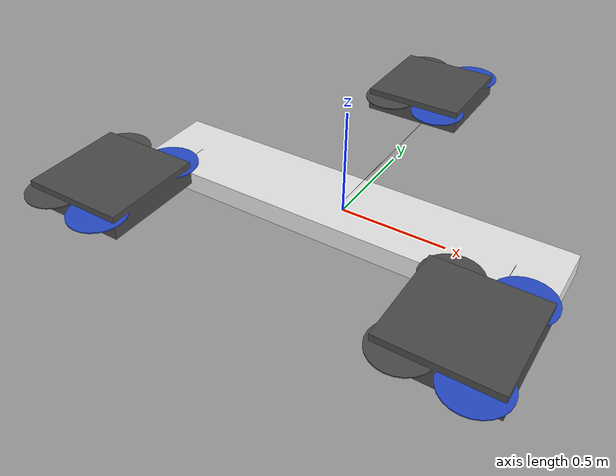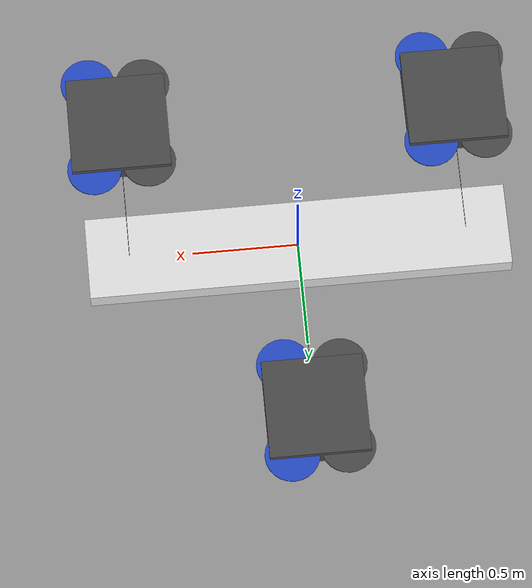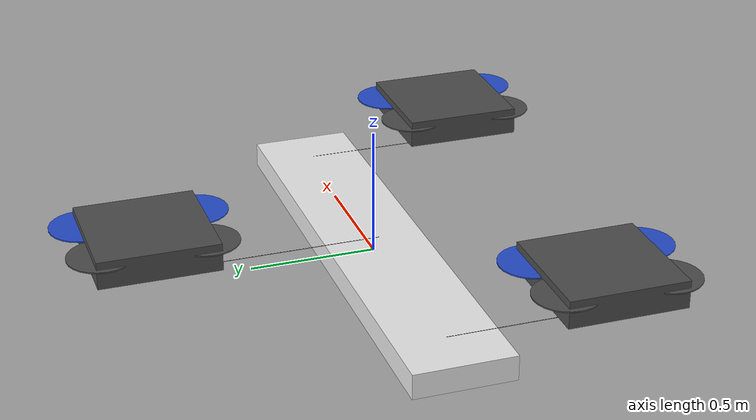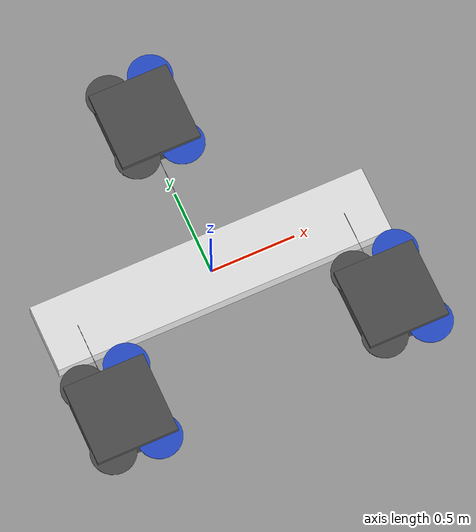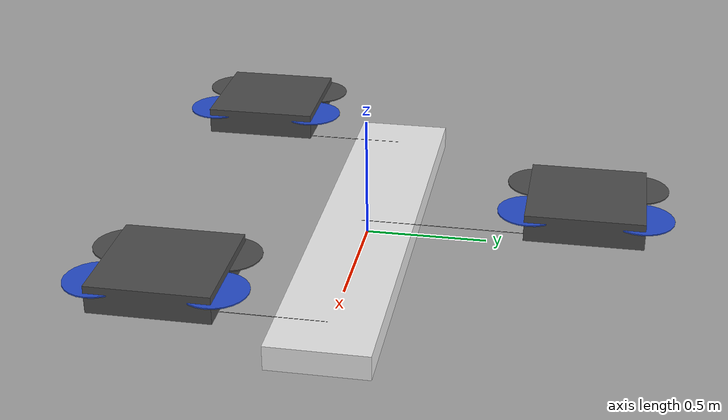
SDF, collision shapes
<sdf version="1.6">
 <model name="multi_iris_visual_payload">
  <model name="iris_0">
   <pose>0.8 -0.6 0.2 0 0 0</pose>
   <link name="base_link">
    <inertial>
     <mass>1.5</mass>
     <inertia>
      <ixx>0.029125</ixx>
      <ixy>0</ixy>
      <ixz>0</ixz>
      <iyy>0.029125</iyy>
      <iyz>0</iyz>
      <izz>0.055225</izz>
     </inertia>
    </inertial>
    <collision name="base_link_inertia_collision">
     <geometry><box><size>0.47 0.47 0.11</size></box></geometry>
     <surface><contact><ode><min_depth>0.001</min_depth><max_vel>0</max_vel></ode></contact></surface>
    </collision>
    <visual name="base_link_inertia_visual">
     <geometry>
      <mesh><scale>1 1 1</scale><uri>model://multi_iris_visual_payload/meshes/iris.stl</uri></mesh>
     </geometry>
     <material>
      <script><name>Gazebo/DarkGrey</name><uri>file://media/materials/scripts/gazebo.material</uri></script>
     </material>
    </visual>
    <sensor name="bottom_camera_sensor" type="camera">
     <pose>0 0.0125 -0.025 3.141593 1.570797 3.141593</pose>
     <update_rate>30</update_rate>
     <camera>
      <horizontal_fov>0.973559</horizontal_fov>
      <image><width>640</width><height>360</height></image>
      <clip><near>0.01</near><far>10</far></clip>
     </camera>
     <plugin name="camera_controller" filename="libgazebo_ros_camera.so">
      <alwaysOn>true</alwaysOn>
      <updateRate>30</updateRate>
      <robotNamespace>/</robotNamespace>
      <cameraName>UAV0/bottom</cameraName>
      <imageTopicName>image_raw</imageTopicName>
      <cameraInfoTopicName>camera_info</cameraInfoTopicName>
      <frameName>body</frameName>
     </plugin>
    </sensor>
    <sensor name="front_camera_sensor" type="camera">
     <pose>0.2 0 0 3.141593 3.141593 3.141593</pose>
     <update_rate>30</update_rate>
     <camera>
      <horizontal_fov>1.39949</horizontal_fov>
      <image><width>640</width><height>360</height></image>
      <clip><near>0.01</near><far>10</far></clip>
     </camera>
     <plugin name="camera_controller" filename="libgazebo_ros_camera.so">
      <alwaysOn>true</alwaysOn>
      <updateRate>30</updateRate>
      <robotNamespace>/</robotNamespace>
      <cameraName>UAV0/front</cameraName>
      <imageTopicName>image_raw</imageTopicName>
      <cameraInfoTopicName>camera_info</cameraInfoTopicName>
      <frameName>body</frameName>
     </plugin>
    </sensor>
   </link>
   <link name="/imu_link">
    <inertial>
     <mass>0.015</mass>
     <inertia><ixx>1e-05</ixx><ixy>0</ixy><ixz>0</ixz><iyy>1e-05</iyy><iyz>0</iyz><izz>1e-05</izz></inertia>
    </inertial>
   </link>
   <joint name="/imu_joint" type="revolute">
    <child>/imu_link</child>
    <parent>base_link</parent>
    <axis>
     <xyz>1 0 0</xyz>
     <limit><lower>0</lower><upper>0</upper><effort>0</effort><velocity>0</velocity></limit>
     <dynamics><spring_reference>0</spring_reference><spring_stiffness>0</spring_stiffness></dynamics>
     <use_parent_model_frame>1</use_parent_model_frame>
    </axis>
   </joint>
   <link name="rotor_0">
    <pose>0.13 -0.22 0.023 0 -0 0</pose>
    <inertial>
     <mass>0.005</mass>
     <inertia>
      <ixx>9.75e-07</ixx>
      <ixy>0</ixy>
      <ixz>0</ixz>
      <iyy>0.000273104</iyy>
      <iyz>0</iyz>
      <izz>0.000274004</izz>
     </inertia>
    </inertial>
    <collision name="rotor_0_collision">
     <geometry><cylinder><length>0.005</length><radius>0.128</radius></cylinder></geometry>
    </collision>
    <visual name="rotor_0_visual">
     <geometry>
      <mesh><scale>1 1 1</scale><uri>model://multi_iris_visual_payload/meshes/iris_prop_ccw.dae</uri></mesh>
     </geometry>
     <material>
      <script><name>Gazebo/Blue</name><uri>file://media/materials/scripts/gazebo.material</uri></script>
     </material>
    </visual>
   </link>
   <joint name="rotor_0_joint" type="revolute">
    <child>rotor_0</child>
    <parent>base_link</parent>
    <axis>
     <xyz>0 0 1</xyz>
     <limit><lower>-1e+16</lower><upper>1e+16</upper></limit>
     <dynamics><spring_reference>0</spring_reference><spring_stiffness>0</spring_stiffness></dynamics>
     <use_parent_model_frame>1</use_parent_model_frame>
    </axis>
   </joint>
   <link name="rotor_1">
    <pose>-0.13 0.2 0.023 0 -0 0</pose>
    <inertial>
     <mass>0.005</mass>
     <inertia>
      <ixx>9.75e-07</ixx>
      <ixy>0</ixy>
      <ixz>0</ixz>
      <iyy>0.000273104</iyy>
      <iyz>0</iyz>
      <izz>0.000274004</izz>
     </inertia>
    </inertial>
    <collision name="rotor_1_collision">
     <geometry><cylinder><length>0.005</length><radius>0.128</radius></cylinder></geometry>
    </collision>
    <visual name="rotor_1_visual">
     <geometry>
      <mesh><scale>1 1 1</scale><uri>model://multi_iris_visual_payload/meshes/iris_prop_ccw.dae</uri></mesh>
     </geometry>
     <material>
      <script><name>Gazebo/DarkGrey</name><uri>file://media/materials/scripts/gazebo.material</uri></script>
     </material>
    </visual>
   </link>
   <joint name="rotor_1_joint" type="revolute">
    <child>rotor_1</child>
    <parent>base_link</parent>
    <axis>
     <xyz>0 0 1</xyz>
     <limit><lower>-1e+16</lower><upper>1e+16</upper></limit>
     <dynamics><spring_reference>0</spring_reference><spring_stiffness>0</spring_stiffness></dynamics>
     <use_parent_model_frame>1</use_parent_model_frame>
    </axis>
   </joint>
   <link name="rotor_2">
    <pose>0.13 0.22 0.023 0 -0 0</pose>
    <inertial>
     <mass>0.005</mass>
     <inertia>
      <ixx>9.75e-07</ixx>
      <ixy>0</ixy>
      <ixz>0</ixz>
      <iyy>0.000273104</iyy>
      <iyz>0</iyz>
      <izz>0.000274004</izz>
     </inertia>
    </inertial>
    <collision name="rotor_2_collision">
     <geometry><cylinder><length>0.005</length><radius>0.128</radius></cylinder></geometry>
    </collision>
    <visual name="rotor_2_visual">
     <geometry>
      <mesh><scale>1 1 1</scale><uri>model://multi_iris_visual_payload/meshes/iris_prop_cw.dae</uri></mesh>
     </geometry>
     <material>
      <script><name>Gazebo/Blue</name><uri>file://media/materials/scripts/gazebo.material</uri></script>
     </material>
    </visual>
   </link>
   <joint name="rotor_2_joint" type="revolute">
    <child>rotor_2</child>
    <parent>base_link</parent>
    <axis>
     <xyz>0 0 1</xyz>
     <limit><lower>-1e+16</lower><upper>1e+16</upper></limit>
     <dynamics><spring_reference>0</spring_reference><spring_stiffness>0</spring_stiffness></dynamics>
     <use_parent_model_frame>1</use_parent_model_frame>
    </axis>
   </joint>
   <link name="rotor_3">
    <pose>-0.13 -0.2 0.023 0 -0 0</pose>
    <inertial>
     <mass>0.005</mass>
     <inertia>
      <ixx>9.75e-07</ixx>
      <ixy>0</ixy>
      <ixz>0</ixz>
      <iyy>0.000273104</iyy>
      <iyz>0</iyz>
      <izz>0.000274004</izz>
     </inertia>
    </inertial>
    <collision name="rotor_3_collision">
     <geometry><cylinder><length>0.005</length><radius>0.128</radius></cylinder></geometry>
    </collision>
    <visual name="rotor_3_visual">
     <geometry>
      <mesh><scale>1 1 1</scale><uri>model://multi_iris_visual_payload/meshes/iris_prop_cw.dae</uri></mesh>
     </geometry>
     <material>
      <script><name>Gazebo/DarkGrey</name><uri>file://media/materials/scripts/gazebo.material</uri></script>
     </material>
    </visual>
   </link>
   <joint name="rotor_3_joint" type="revolute">
    <child>rotor_3</child>
    <parent>base_link</parent>
    <axis>
     <xyz>0 0 1</xyz>
     <limit><lower>-1e+16</lower><upper>1e+16</upper></limit>
     <dynamics><spring_reference>0</spring_reference><spring_stiffness>0</spring_stiffness></dynamics>
     <use_parent_model_frame>1</use_parent_model_frame>
    </axis>
   </joint>
   <plugin name="rosbag" filename="libgazebo_multirotor_base_plugin.so">
    <linkName>base_link</linkName>
    <rotorVelocitySlowdownSim>10</rotorVelocitySlowdownSim>
   </plugin>
   <plugin name="front_right_motor_model" filename="libgazebo_motor_model.so">
    <jointName>rotor_0_joint</jointName>
    <linkName>rotor_0</linkName>
    <turningDirection>ccw</turningDirection>
    <timeConstantUp>0.0125</timeConstantUp>
    <timeConstantDown>0.025</timeConstantDown>
    <maxRotVelocity>1100</maxRotVelocity>
    <motorConstant>8.54858e-06</motorConstant>
    <momentConstant>0.06</momentConstant>
    <commandSubTopic>/gazebo/command/motor_speed</commandSubTopic>
    <motorNumber>0</motorNumber>
    <rotorDragCoefficient>0.000806428</rotorDragCoefficient>
    <rollingMomentCoefficient>1e-06</rollingMomentCoefficient>
    <motorSpeedPubTopic>/motor_speed/0</motorSpeedPubTopic>
    <rotorVelocitySlowdownSim>10</rotorVelocitySlowdownSim>
   </plugin>
   <plugin name="back_left_motor_model" filename="libgazebo_motor_model.so">
    <jointName>rotor_1_joint</jointName>
    <linkName>rotor_1</linkName>
    <turningDirection>ccw</turningDirection>
    <timeConstantUp>0.0125</timeConstantUp>
    <timeConstantDown>0.025</timeConstantDown>
    <maxRotVelocity>1100</maxRotVelocity>
    <motorConstant>8.54858e-06</motorConstant>
    <momentConstant>0.06</momentConstant>
    <commandSubTopic>/gazebo/command/motor_speed</commandSubTopic>
    <motorNumber>1</motorNumber>
    <rotorDragCoefficient>0.000806428</rotorDragCoefficient>
    <rollingMomentCoefficient>1e-06</rollingMomentCoefficient>
    <motorSpeedPubTopic>/motor_speed/1</motorSpeedPubTopic>
    <rotorVelocitySlowdownSim>10</rotorVelocitySlowdownSim>
   </plugin>
   <plugin name="front_left_motor_model" filename="libgazebo_motor_model.so">
    <jointName>rotor_2_joint</jointName>
    <linkName>rotor_2</linkName>
    <turningDirection>cw</turningDirection>
    <timeConstantUp>0.0125</timeConstantUp>
    <timeConstantDown>0.025</timeConstantDown>
    <maxRotVelocity>1100</maxRotVelocity>
    <motorConstant>8.54858e-06</motorConstant>
    <momentConstant>0.06</momentConstant>
    <commandSubTopic>/gazebo/command/motor_speed</commandSubTopic>
    <motorNumber>2</motorNumber>
    <rotorDragCoefficient>0.000806428</rotorDragCoefficient>
    <rollingMomentCoefficient>1e-06</rollingMomentCoefficient>
    <motorSpeedPubTopic>/motor_speed/2</motorSpeedPubTopic>
    <rotorVelocitySlowdownSim>10</rotorVelocitySlowdownSim>
   </plugin>
   <plugin name="back_right_motor_model" filename="libgazebo_motor_model.so">
    <jointName>rotor_3_joint</jointName>
    <linkName>rotor_3</linkName>
    <turningDirection>cw</turningDirection>
    <timeConstantUp>0.0125</timeConstantUp>
    <timeConstantDown>0.025</timeConstantDown>
    <maxRotVelocity>1100</maxRotVelocity>
    <motorConstant>8.54858e-06</motorConstant>
    <momentConstant>0.06</momentConstant>
    <commandSubTopic>/gazebo/command/motor_speed</commandSubTopic>
    <motorNumber>3</motorNumber>
    <rotorDragCoefficient>0.000806428</rotorDragCoefficient>
    <rollingMomentCoefficient>1e-06</rollingMomentCoefficient>
    <motorSpeedPubTopic>/motor_speed/3</motorSpeedPubTopic>
    <rotorVelocitySlowdownSim>10</rotorVelocitySlowdownSim>
   </plugin>
   <plugin name="magnetometer_plugin" filename="libgazebo_magnetometer_plugin.so">
    <pubRate>20</pubRate>
    <noiseDensity>0.0004</noiseDensity>
    <randomWalk>6.4e-06</randomWalk>
    <biasCorrelationTime>600</biasCorrelationTime>
    <magTopic>/mag</magTopic>
   </plugin>
   <plugin name="barometer_plugin" filename="libgazebo_barometer_plugin.so">
    <pubRate>10</pubRate>
    <baroTopic>/baro</baroTopic>
   </plugin>
   <plugin name="mavlink_interface" filename="libgazebo_mavlink_interface.so">
    <imuSubTopic>/imu</imuSubTopic>
    <gpsSubTopic>/gps</gpsSubTopic>
    <magSubTopic>/mag</magSubTopic>
    <baroSubTopic>/baro</baroSubTopic>
    <mavlink_addr>INADDR_ANY</mavlink_addr>
    <mavlink_udp_port>14560</mavlink_udp_port>
    <mavlink_tcp_port>4560</mavlink_tcp_port>
    <serialEnabled>false</serialEnabled>
    <serialDevice>/dev/ttyACM0</serialDevice>
    <baudRate>921600</baudRate>
    <qgc_addr>INADDR_ANY</qgc_addr>
    <qgc_udp_port>14550</qgc_udp_port>
    <sdk_addr>INADDR_ANY</sdk_addr>
    <sdk_udp_port>14540</sdk_udp_port>
    <hil_mode>false</hil_mode>
    <hil_state_level>false</hil_state_level>
    <vehicle_is_tailsitter>false</vehicle_is_tailsitter>
    <send_vision_estimation>true</send_vision_estimation>
    <send_odometry>false</send_odometry>
    <enable_lockstep>true</enable_lockstep>
    <use_tcp>true</use_tcp>
    <motorSpeedCommandPubTopic>/gazebo/command/motor_speed</motorSpeedCommandPubTopic>
    <control_channels>
     <channel name="rotor1">
      <input_index>0</input_index>
      <input_offset>0</input_offset>
      <input_scaling>1000</input_scaling>
      <zero_position_disarmed>0</zero_position_disarmed>
      <zero_position_armed>100</zero_position_armed>
      <joint_control_type>velocity</joint_control_type>
     </channel>
     <channel name="rotor2">
      <input_index>1</input_index>
      <input_offset>0</input_offset>
      <input_scaling>1000</input_scaling>
      <zero_position_disarmed>0</zero_position_disarmed>
      <zero_position_armed>100</zero_position_armed>
      <joint_control_type>velocity</joint_control_type>
     </channel>
     <channel name="rotor3">
      <input_index>2</input_index>
      <input_offset>0</input_offset>
      <input_scaling>1000</input_scaling>
      <zero_position_disarmed>0</zero_position_disarmed>
      <zero_position_armed>100</zero_position_armed>
      <joint_control_type>velocity</joint_control_type>
     </channel>
     <channel name="rotor4">
      <input_index>3</input_index>
      <input_offset>0</input_offset>
      <input_scaling>1000</input_scaling>
      <zero_position_disarmed>0</zero_position_disarmed>
      <zero_position_armed>100</zero_position_armed>
      <joint_control_type>velocity</joint_control_type>
     </channel>
     <channel name="rotor5">
      <input_index>4</input_index>
      <input_offset>1</input_offset>
      <input_scaling>324.6</input_scaling>
      <zero_position_disarmed>0</zero_position_disarmed>
      <zero_position_armed>0</zero_position_armed>
      <joint_control_type>velocity</joint_control_type>
      <joint_control_pid>
       <p>0.1</p>
       <i>0</i>
       <d>0</d>
       <iMax>0.0</iMax>
       <iMin>0.0</iMin>
       <cmdMax>2</cmdMax>
       <cmdMin>-2</cmdMin>
      </joint_control_pid>
      <joint_name>zephyr_delta_wing::propeller_joint</joint_name>
     </channel>
     <channel name="rotor6">
      <input_index>5</input_index>
      <input_offset>0</input_offset>
      <input_scaling>0.524</input_scaling>
      <zero_position_disarmed>0</zero_position_disarmed>
      <zero_position_armed>0</zero_position_armed>
      <joint_control_type>position</joint_control_type>
      <joint_name>zephyr_delta_wing::flap_left_joint</joint_name>
      <joint_control_pid>
       <p>10.0</p>
       <i>0</i>
       <d>0</d>
       <iMax>0</iMax>
       <iMin>0</iMin>
       <cmdMax>20</cmdMax>
       <cmdMin>-20</cmdMin>
      </joint_control_pid>
     </channel>
     <channel name="rotor7">
      <input_index>6</input_index>
      <input_offset>0</input_offset>
      <input_scaling>0.524</input_scaling>
      <zero_position_disarmed>0</zero_position_disarmed>
      <zero_position_armed>0</zero_position_armed>
      <joint_control_type>position</joint_control_type>
      <joint_name>zephyr_delta_wing::flap_right_joint</joint_name>
      <joint_control_pid>
       <p>10.0</p>
       <i>0</i>
       <d>0</d>
       <iMax>0</iMax>
       <iMin>0</iMin>
       <cmdMax>20</cmdMax>
       <cmdMin>-20</cmdMin>
      </joint_control_pid>
     </channel>
     <channel name="rotor8">
      <input_index>7</input_index>
      <input_offset>0</input_offset>
      <input_scaling>0.524</input_scaling>
      <zero_position_disarmed>0</zero_position_disarmed>
      <zero_position_armed>0</zero_position_armed>
      <joint_control_type>position</joint_control_type>
     </channel>
    </control_channels>
   </plugin>
   <static>0</static>
   <plugin name="rotors_gazebo_imu_plugin" filename="libgazebo_imu_plugin.so">
    <linkName>/imu_link</linkName>
    <imuTopic>/imu</imuTopic>
    <gyroscopeNoiseDensity>0.0003394</gyroscopeNoiseDensity>
    <gyroscopeRandomWalk>3.8785e-05</gyroscopeRandomWalk>
    <gyroscopeBiasCorrelationTime>1000.0</gyroscopeBiasCorrelationTime>
    <gyroscopeTurnOnBiasSigma>0.0087</gyroscopeTurnOnBiasSigma>
    <accelerometerNoiseDensity>0.004</accelerometerNoiseDensity>
    <accelerometerRandomWalk>0.006</accelerometerRandomWalk>
    <accelerometerBiasCorrelationTime>300.0</accelerometerBiasCorrelationTime>
    <accelerometerTurnOnBiasSigma>0.196</accelerometerTurnOnBiasSigma>
   </plugin>
   <plugin name="p3d_base_controller" filename="libgazebo_ros_p3d.so">
    <alwaysOn>true</alwaysOn>
    <updateRate>100.0</updateRate>
    <bodyName>base_link</bodyName>
    <topicName>gazebo_ground_truth_UAV0</topicName>
    <gaussianNoise>0</gaussianNoise>
    <frameName>/map</frameName>
    <xyzOffsets>0 0 0</xyzOffsets>
    <rpyOffsets>0 0 0</rpyOffsets>
   </plugin>
  </model>
  <model name="iris_1">
   <pose>-0.8 -0.6 0.2 0 -0 0</pose>
   <link name="base_link">
    <inertial>
     <mass>1.5</mass>
     <inertia>
      <ixx>0.029125</ixx>
      <ixy>0</ixy>
      <ixz>0</ixz>
      <iyy>0.029125</iyy>
      <iyz>0</iyz>
      <izz>0.055225</izz>
     </inertia>
    </inertial>
    <collision name="base_link_inertia_collision">
     <geometry><box><size>0.47 0.47 0.11</size></box></geometry>
     <surface><contact><ode><min_depth>0.001</min_depth><max_vel>0</max_vel></ode></contact></surface>
    </collision>
    <visual name="base_link_inertia_visual">
     <geometry>
      <mesh><scale>1 1 1</scale><uri>model://multi_iris_visual_payload/meshes/iris.stl</uri></mesh>
     </geometry>
     <material>
      <script><name>Gazebo/DarkGrey</name><uri>file://media/materials/scripts/gazebo.material</uri></script>
     </material>
    </visual>
    <sensor name="bottom_camera_sensor" type="camera">
     <pose>0 0.0125 -0.025 3.141593 1.570797 3.141593</pose>
     <update_rate>30</update_rate>
     <camera>
      <horizontal_fov>0.973559</horizontal_fov>
      <image><width>640</width><height>360</height></image>
      <clip><near>0.01</near><far>10</far></clip>
     </camera>
     <plugin name="camera_controller" filename="libgazebo_ros_camera.so">
      <alwaysOn>true</alwaysOn>
      <updateRate>30</updateRate>
      <robotNamespace>/</robotNamespace>
      <cameraName>UAV1/bottom</cameraName>
      <imageTopicName>image_raw</imageTopicName>
      <cameraInfoTopicName>camera_info</cameraInfoTopicName>
      <frameName>body</frameName>
     </plugin>
    </sensor>
    <sensor name="front_camera_sensor" type="camera">
     <pose>0.2 0 0 3.141593 3.141593 3.141593</pose>
     <update_rate>30</update_rate>
     <camera>
      <horizontal_fov>1.39949</horizontal_fov>
      <image><width>640</width><height>360</height></image>
      <clip><near>0.01</near><far>10</far></clip>
     </camera>
     <plugin name="camera_controller" filename="libgazebo_ros_camera.so">
      <alwaysOn>true</alwaysOn>
      <updateRate>30</updateRate>
      <robotNamespace>/</robotNamespace>
      <cameraName>UAV1/front</cameraName>
      <imageTopicName>image_raw</imageTopicName>
      <cameraInfoTopicName>camera_info</cameraInfoTopicName>
      <frameName>body</frameName>
     </plugin>
    </sensor>
   </link>
   <link name="/imu_link">
    <inertial>
     <mass>0.015</mass>
     <inertia><ixx>1e-05</ixx><ixy>0</ixy><ixz>0</ixz><iyy>1e-05</iyy><iyz>0</iyz><izz>1e-05</izz></inertia>
    </inertial>
   </link>
   <joint name="/imu_joint" type="revolute">
    <child>/imu_link</child>
    <parent>base_link</parent>
    <axis>
     <xyz>1 0 0</xyz>
     <limit><lower>0</lower><upper>0</upper><effort>0</effort><velocity>0</velocity></limit>
     <dynamics><spring_reference>0</spring_reference><spring_stiffness>0</spring_stiffness></dynamics>
     <use_parent_model_frame>1</use_parent_model_frame>
    </axis>
   </joint>
   <link name="rotor_0">
    <pose>0.13 -0.22 0.023 0 -0 0</pose>
    <inertial>
     <mass>0.005</mass>
     <inertia>
      <ixx>9.75e-07</ixx>
      <ixy>0</ixy>
      <ixz>0</ixz>
      <iyy>0.000273104</iyy>
      <iyz>0</iyz>
      <izz>0.000274004</izz>
     </inertia>
    </inertial>
    <collision name="rotor_0_collision">
     <geometry><cylinder><length>0.005</length><radius>0.128</radius></cylinder></geometry>
    </collision>
    <visual name="rotor_0_visual">
     <geometry>
      <mesh><scale>1 1 1</scale><uri>model://multi_iris_visual_payload/meshes/iris_prop_ccw.dae</uri></mesh>
     </geometry>
     <material>
      <script><name>Gazebo/Blue</name><uri>file://media/materials/scripts/gazebo.material</uri></script>
     </material>
    </visual>
   </link>
   <joint name="rotor_0_joint" type="revolute">
    <child>rotor_0</child>
    <parent>base_link</parent>
    <axis>
     <xyz>0 0 1</xyz>
     <limit><lower>-1e+16</lower><upper>1e+16</upper></limit>
     <dynamics><spring_reference>0</spring_reference><spring_stiffness>0</spring_stiffness></dynamics>
     <use_parent_model_frame>1</use_parent_model_frame>
    </axis>
   </joint>
   <link name="rotor_1">
    <pose>-0.13 0.2 0.023 0 -0 0</pose>
    <inertial>
     <mass>0.005</mass>
     <inertia>
      <ixx>9.75e-07</ixx>
      <ixy>0</ixy>
      <ixz>0</ixz>
      <iyy>0.000273104</iyy>
      <iyz>0</iyz>
      <izz>0.000274004</izz>
     </inertia>
    </inertial>
    <collision name="rotor_1_collision">
     <geometry><cylinder><length>0.005</length><radius>0.128</radius></cylinder></geometry>
    </collision>
    <visual name="rotor_1_visual">
     <geometry>
      <mesh><scale>1 1 1</scale><uri>model://multi_iris_visual_payload/meshes/iris_prop_ccw.dae</uri></mesh>
     </geometry>
     <material>
      <script><name>Gazebo/DarkGrey</name><uri>file://media/materials/scripts/gazebo.material</uri></script>
     </material>
    </visual>
   </link>
   <joint name="rotor_1_joint" type="revolute">
    <child>rotor_1</child>
    <parent>base_link</parent>
    <axis>
     <xyz>0 0 1</xyz>
     <limit><lower>-1e+16</lower><upper>1e+16</upper></limit>
     <dynamics><spring_reference>0</spring_reference><spring_stiffness>0</spring_stiffness></dynamics>
     <use_parent_model_frame>1</use_parent_model_frame>
    </axis>
   </joint>
   <link name="rotor_2">
    <pose>0.13 0.22 0.023 0 -0 0</pose>
    <inertial>
     <mass>0.005</mass>
     <inertia>
      <ixx>9.75e-07</ixx>
      <ixy>0</ixy>
      <ixz>0</ixz>
      <iyy>0.000273104</iyy>
      <iyz>0</iyz>
      <izz>0.000274004</izz>
     </inertia>
    </inertial>
    <collision name="rotor_2_collision">
     <geometry><cylinder><length>0.005</length><radius>0.128</radius></cylinder></geometry>
    </collision>
    <visual name="rotor_2_visual">
     <geometry>
      <mesh><scale>1 1 1</scale><uri>model://multi_iris_visual_payload/meshes/iris_prop_cw.dae</uri></mesh>
     </geometry>
     <material>
      <script><name>Gazebo/Blue</name><uri>file://media/materials/scripts/gazebo.material</uri></script>
     </material>
    </visual>
   </link>
   <joint name="rotor_2_joint" type="revolute">
    <child>rotor_2</child>
    <parent>base_link</parent>
    <axis>
     <xyz>0 0 1</xyz>
     <limit><lower>-1e+16</lower><upper>1e+16</upper></limit>
     <dynamics><spring_reference>0</spring_reference><spring_stiffness>0</spring_stiffness></dynamics>
     <use_parent_model_frame>1</use_parent_model_frame>
    </axis>
   </joint>
   <link name="rotor_3">
    <pose>-0.13 -0.2 0.023 0 -0 0</pose>
    <inertial>
     <mass>0.005</mass>
     <inertia>
      <ixx>9.75e-07</ixx>
      <ixy>0</ixy>
      <ixz>0</ixz>
      <iyy>0.000273104</iyy>
      <iyz>0</iyz>
      <izz>0.000274004</izz>
     </inertia>
    </inertial>
    <collision name="rotor_3_collision">
     <geometry><cylinder><length>0.005</length><radius>0.128</radius></cylinder></geometry>
    </collision>
    <visual name="rotor_3_visual">
     <geometry>
      <mesh><scale>1 1 1</scale><uri>model://multi_iris_visual_payload/meshes/iris_prop_cw.dae</uri></mesh>
     </geometry>
     <material>
      <script><name>Gazebo/DarkGrey</name><uri>file://media/materials/scripts/gazebo.material</uri></script>
     </material>
    </visual>
   </link>
   <joint name="rotor_3_joint" type="revolute">
    <child>rotor_3</child>
    <parent>base_link</parent>
    <axis>
     <xyz>0 0 1</xyz>
     <limit><lower>-1e+16</lower><upper>1e+16</upper></limit>
     <dynamics><spring_reference>0</spring_reference><spring_stiffness>0</spring_stiffness></dynamics>
     <use_parent_model_frame>1</use_parent_model_frame>
    </axis>
   </joint>
   <plugin name="rosbag" filename="libgazebo_multirotor_base_plugin.so">
    <linkName>base_link</linkName>
    <rotorVelocitySlowdownSim>10</rotorVelocitySlowdownSim>
   </plugin>
   <plugin name="front_right_motor_model" filename="libgazebo_motor_model.so">
    <jointName>rotor_0_joint</jointName>
    <linkName>rotor_0</linkName>
    <turningDirection>ccw</turningDirection>
    <timeConstantUp>0.0125</timeConstantUp>
    <timeConstantDown>0.025</timeConstantDown>
    <maxRotVelocity>1100</maxRotVelocity>
    <motorConstant>8.54858e-06</motorConstant>
    <momentConstant>0.06</momentConstant>
    <commandSubTopic>/gazebo/command/motor_speed</commandSubTopic>
    <motorNumber>0</motorNumber>
    <rotorDragCoefficient>0.000806428</rotorDragCoefficient>
    <rollingMomentCoefficient>1e-06</rollingMomentCoefficient>
    <motorSpeedPubTopic>/motor_speed/0</motorSpeedPubTopic>
    <rotorVelocitySlowdownSim>10</rotorVelocitySlowdownSim>
   </plugin>
   <plugin name="back_left_motor_model" filename="libgazebo_motor_model.so">
    <jointName>rotor_1_joint</jointName>
    <linkName>rotor_1</linkName>
    <turningDirection>ccw</turningDirection>
    <timeConstantUp>0.0125</timeConstantUp>
    <timeConstantDown>0.025</timeConstantDown>
    <maxRotVelocity>1100</maxRotVelocity>
    <motorConstant>8.54858e-06</motorConstant>
    <momentConstant>0.06</momentConstant>
    <commandSubTopic>/gazebo/command/motor_speed</commandSubTopic>
    <motorNumber>1</motorNumber>
    <rotorDragCoefficient>0.000806428</rotorDragCoefficient>
    <rollingMomentCoefficient>1e-06</rollingMomentCoefficient>
    <motorSpeedPubTopic>/motor_speed/1</motorSpeedPubTopic>
    <rotorVelocitySlowdownSim>10</rotorVelocitySlowdownSim>
   </plugin>
   <plugin name="front_left_motor_model" filename="libgazebo_motor_model.so">
    <jointName>rotor_2_joint</jointName>
    <linkName>rotor_2</linkName>
    <turningDirection>cw</turningDirection>
    <timeConstantUp>0.0125</timeConstantUp>
    <timeConstantDown>0.025</timeConstantDown>
    <maxRotVelocity>1100</maxRotVelocity>
    <motorConstant>8.54858e-06</motorConstant>
    <momentConstant>0.06</momentConstant>
    <commandSubTopic>/gazebo/command/motor_speed</commandSubTopic>
    <motorNumber>2</motorNumber>
    <rotorDragCoefficient>0.000806428</rotorDragCoefficient>
    <rollingMomentCoefficient>1e-06</rollingMomentCoefficient>
    <motorSpeedPubTopic>/motor_speed/2</motorSpeedPubTopic>
    <rotorVelocitySlowdownSim>10</rotorVelocitySlowdownSim>
   </plugin>
   <plugin name="back_right_motor_model" filename="libgazebo_motor_model.so">
    <jointName>rotor_3_joint</jointName>
    <linkName>rotor_3</linkName>
    <turningDirection>cw</turningDirection>
    <timeConstantUp>0.0125</timeConstantUp>
    <timeConstantDown>0.025</timeConstantDown>
    <maxRotVelocity>1100</maxRotVelocity>
    <motorConstant>8.54858e-06</motorConstant>
    <momentConstant>0.06</momentConstant>
    <commandSubTopic>/gazebo/command/motor_speed</commandSubTopic>
    <motorNumber>3</motorNumber>
    <rotorDragCoefficient>0.000806428</rotorDragCoefficient>
    <rollingMomentCoefficient>1e-06</rollingMomentCoefficient>
    <motorSpeedPubTopic>/motor_speed/3</motorSpeedPubTopic>
    <rotorVelocitySlowdownSim>10</rotorVelocitySlowdownSim>
   </plugin>
   <plugin name="magnetometer_plugin" filename="libgazebo_magnetometer_plugin.so">
    <pubRate>20</pubRate>
    <noiseDensity>0.0004</noiseDensity>
    <randomWalk>6.4e-06</randomWalk>
    <biasCorrelationTime>600</biasCorrelationTime>
    <magTopic>/mag</magTopic>
   </plugin>
   <plugin name="barometer_plugin" filename="libgazebo_barometer_plugin.so">
    <pubRate>10</pubRate>
    <baroTopic>/baro</baroTopic>
   </plugin>
   <plugin name="mavlink_interface" filename="libgazebo_mavlink_interface.so">
    <imuSubTopic>/imu</imuSubTopic>
    <gpsSubTopic>/gps</gpsSubTopic>
    <magSubTopic>/mag</magSubTopic>
    <baroSubTopic>/baro</baroSubTopic>
    <mavlink_addr>INADDR_ANY</mavlink_addr>
    <mavlink_udp_port>14561</mavlink_udp_port>
    <mavlink_tcp_port>4561</mavlink_tcp_port>
    <serialEnabled>false</serialEnabled>
    <serialDevice>/dev/ttyACM0</serialDevice>
    <baudRate>921600</baudRate>
    <qgc_addr>INADDR_ANY</qgc_addr>
    <qgc_udp_port>14550</qgc_udp_port>
    <sdk_addr>INADDR_ANY</sdk_addr>
    <sdk_udp_port>14540</sdk_udp_port>
    <hil_mode>false</hil_mode>
    <hil_state_level>false</hil_state_level>
    <vehicle_is_tailsitter>false</vehicle_is_tailsitter>
    <send_vision_estimation>true</send_vision_estimation>
    <send_odometry>false</send_odometry>
    <enable_lockstep>true</enable_lockstep>
    <use_tcp>true</use_tcp>
    <motorSpeedCommandPubTopic>/gazebo/command/motor_speed</motorSpeedCommandPubTopic>
    <control_channels>
     <channel name="rotor1">
      <input_index>0</input_index>
      <input_offset>0</input_offset>
      <input_scaling>1000</input_scaling>
      <zero_position_disarmed>0</zero_position_disarmed>
      <zero_position_armed>100</zero_position_armed>
      <joint_control_type>velocity</joint_control_type>
     </channel>
     <channel name="rotor2">
      <input_index>1</input_index>
      <input_offset>0</input_offset>
      <input_scaling>1000</input_scaling>
      <zero_position_disarmed>0</zero_position_disarmed>
      <zero_position_armed>100</zero_position_armed>
      <joint_control_type>velocity</joint_control_type>
     </channel>
     <channel name="rotor3">
      <input_index>2</input_index>
      <input_offset>0</input_offset>
      <input_scaling>1000</input_scaling>
      <zero_position_disarmed>0</zero_position_disarmed>
      <zero_position_armed>100</zero_position_armed>
      <joint_control_type>velocity</joint_control_type>
     </channel>
     <channel name="rotor4">
      <input_index>3</input_index>
      <input_offset>0</input_offset>
      <input_scaling>1000</input_scaling>
      <zero_position_disarmed>0</zero_position_disarmed>
      <zero_position_armed>100</zero_position_armed>
      <joint_control_type>velocity</joint_control_type>
     </channel>
     <channel name="rotor5">
      <input_index>4</input_index>
      <input_offset>1</input_offset>
      <input_scaling>324.6</input_scaling>
      <zero_position_disarmed>0</zero_position_disarmed>
      <zero_position_armed>0</zero_position_armed>
      <joint_control_type>velocity</joint_control_type>
      <joint_control_pid>
       <p>0.1</p>
       <i>0</i>
       <d>0</d>
       <iMax>0.0</iMax>
       <iMin>0.0</iMin>
       <cmdMax>2</cmdMax>
       <cmdMin>-2</cmdMin>
      </joint_control_pid>
      <joint_name>zephyr_delta_wing::propeller_joint</joint_name>
     </channel>
     <channel name="rotor6">
      <input_index>5</input_index>
      <input_offset>0</input_offset>
      <input_scaling>0.524</input_scaling>
      <zero_position_disarmed>0</zero_position_disarmed>
      <zero_position_armed>0</zero_position_armed>
      <joint_control_type>position</joint_control_type>
      <joint_name>zephyr_delta_wing::flap_left_joint</joint_name>
      <joint_control_pid>
       <p>10.0</p>
       <i>0</i>
       <d>0</d>
       <iMax>0</iMax>
       <iMin>0</iMin>
       <cmdMax>20</cmdMax>
       <cmdMin>-20</cmdMin>
      </joint_control_pid>
     </channel>
     <channel name="rotor7">
      <input_index>6</input_index>
      <input_offset>0</input_offset>
      <input_scaling>0.524</input_scaling>
      <zero_position_disarmed>0</zero_position_disarmed>
      <zero_position_armed>0</zero_position_armed>
      <joint_control_type>position</joint_control_type>
      <joint_name>zephyr_delta_wing::flap_right_joint</joint_name>
      <joint_control_pid>
       <p>10.0</p>
       <i>0</i>
       <d>0</d>
       <iMax>0</iMax>
       <iMin>0</iMin>
       <cmdMax>20</cmdMax>
       <cmdMin>-20</cmdMin>
      </joint_control_pid>
     </channel>
     <channel name="rotor8">
      <input_index>7</input_index>
      <input_offset>0</input_offset>
      <input_scaling>0.524</input_scaling>
      <zero_position_disarmed>0</zero_position_disarmed>
      <zero_position_armed>0</zero_position_armed>
      <joint_control_type>position</joint_control_type>
     </channel>
    </control_channels>
   </plugin>
   <static>0</static>
   <plugin name="rotors_gazebo_imu_plugin" filename="libgazebo_imu_plugin.so">
    <linkName>/imu_link</linkName>
    <imuTopic>/imu</imuTopic>
    <gyroscopeNoiseDensity>0.0003394</gyroscopeNoiseDensity>
    <gyroscopeRandomWalk>3.8785e-05</gyroscopeRandomWalk>
    <gyroscopeBiasCorrelationTime>1000.0</gyroscopeBiasCorrelationTime>
    <gyroscopeTurnOnBiasSigma>0.0087</gyroscopeTurnOnBiasSigma>
    <accelerometerNoiseDensity>0.004</accelerometerNoiseDensity>
    <accelerometerRandomWalk>0.006</accelerometerRandomWalk>
    <accelerometerBiasCorrelationTime>300.0</accelerometerBiasCorrelationTime>
    <accelerometerTurnOnBiasSigma>0.196</accelerometerTurnOnBiasSigma>
   </plugin>
   <plugin name="p3d_base_controller" filename="libgazebo_ros_p3d.so">
    <alwaysOn>true</alwaysOn>
    <updateRate>100.0</updateRate>
    <bodyName>base_link</bodyName>
    <topicName>gazebo_ground_truth_UAV1</topicName>
    <gaussianNoise>0</gaussianNoise>
    <frameName>/map</frameName>
    <xyzOffsets>0 0 0</xyzOffsets>
    <rpyOffsets>0 0 0</rpyOffsets>
   </plugin>
  </model>
  <model name="iris_2">
   <pose>0 0.9 0.2 0 -0 0</pose>
   <link name="base_link">
    <inertial>
     <mass>1.5</mass>
     <inertia>
      <ixx>0.029125</ixx>
      <ixy>0</ixy>
      <ixz>0</ixz>
      <iyy>0.029125</iyy>
      <iyz>0</iyz>
      <izz>0.055225</izz>
     </inertia>
    </inertial>
    <collision name="base_link_inertia_collision">
     <geometry><box><size>0.47 0.47 0.11</size></box></geometry>
     <surface><contact><ode><min_depth>0.001</min_depth><max_vel>0</max_vel></ode></contact></surface>
    </collision>
    <visual name="base_link_inertia_visual">
     <geometry>
      <mesh><scale>1 1 1</scale><uri>model://multi_iris_visual_payload/meshes/iris.stl</uri></mesh>
     </geometry>
     <material>
      <script><name>Gazebo/DarkGrey</name><uri>file://media/materials/scripts/gazebo.material</uri></script>
     </material>
    </visual>
    <sensor name="bottom_camera_sensor" type="camera">
     <pose>0 0.0125 -0.025 3.141593 1.570797 3.141593</pose>
     <update_rate>30</update_rate>
     <camera>
      <horizontal_fov>0.973559</horizontal_fov>
      <image><width>640</width><height>360</height></image>
      <clip><near>0.01</near><far>10</far></clip>
     </camera>
     <plugin name="camera_controller" filename="libgazebo_ros_camera.so">
      <alwaysOn>true</alwaysOn>
      <updateRate>30</updateRate>
      <robotNamespace>/</robotNamespace>
      <cameraName>UAV2/bottom</cameraName>
      <imageTopicName>image_raw</imageTopicName>
      <cameraInfoTopicName>camera_info</cameraInfoTopicName>
      <frameName>body</frameName>
     </plugin>
    </sensor>
    <sensor name="front_camera_sensor" type="camera">
     <pose>0.2 0 0 3.141593 3.141593 3.141593</pose>
     <update_rate>30</update_rate>
     <camera>
      <horizontal_fov>1.39949</horizontal_fov>
      <image><width>640</width><height>360</height></image>
      <clip><near>0.01</near><far>10</far></clip>
     </camera>
     <plugin name="camera_controller" filename="libgazebo_ros_camera.so">
      <alwaysOn>true</alwaysOn>
      <updateRate>30</updateRate>
      <robotNamespace>/</robotNamespace>
      <cameraName>UAV2/front</cameraName>
      <imageTopicName>image_raw</imageTopicName>
      <cameraInfoTopicName>camera_info</cameraInfoTopicName>
      <frameName>body</frameName>
     </plugin>
    </sensor>
   </link>
   <link name="/imu_link">
    <inertial>
     <mass>0.015</mass>
     <inertia><ixx>1e-05</ixx><ixy>0</ixy><ixz>0</ixz><iyy>1e-05</iyy><iyz>0</iyz><izz>1e-05</izz></inertia>
    </inertial>
   </link>
   <joint name="/imu_joint" type="revolute">
    <child>/imu_link</child>
    <parent>base_link</parent>
    <axis>
     <xyz>1 0 0</xyz>
     <limit><lower>0</lower><upper>0</upper><effort>0</effort><velocity>0</velocity></limit>
     <dynamics><spring_reference>0</spring_reference><spring_stiffness>0</spring_stiffness></dynamics>
     <use_parent_model_frame>1</use_parent_model_frame>
    </axis>
   </joint>
   <link name="rotor_0">
    <pose>0.13 -0.22 0.023 0 -0 0</pose>
    <inertial>
     <mass>0.005</mass>
     <inertia>
      <ixx>9.75e-07</ixx>
      <ixy>0</ixy>
      <ixz>0</ixz>
      <iyy>0.000273104</iyy>
      <iyz>0</iyz>
      <izz>0.000274004</izz>
     </inertia>
    </inertial>
    <collision name="rotor_0_collision">
     <geometry><cylinder><length>0.005</length><radius>0.128</radius></cylinder></geometry>
    </collision>
    <visual name="rotor_0_visual">
     <geometry>
      <mesh><scale>1 1 1</scale><uri>model://multi_iris_visual_payload/meshes/iris_prop_ccw.dae</uri></mesh>
     </geometry>
     <material>
      <script><name>Gazebo/Blue</name><uri>file://media/materials/scripts/gazebo.material</uri></script>
     </material>
    </visual>
   </link>
   <joint name="rotor_0_joint" type="revolute">
    <child>rotor_0</child>
    <parent>base_link</parent>
    <axis>
     <xyz>0 0 1</xyz>
     <limit><lower>-1e+16</lower><upper>1e+16</upper></limit>
     <dynamics><spring_reference>0</spring_reference><spring_stiffness>0</spring_stiffness></dynamics>
     <use_parent_model_frame>1</use_parent_model_frame>
    </axis>
   </joint>
   <link name="rotor_1">
    <pose>-0.13 0.2 0.023 0 -0 0</pose>
    <inertial>
     <mass>0.005</mass>
     <inertia>
      <ixx>9.75e-07</ixx>
      <ixy>0</ixy>
      <ixz>0</ixz>
      <iyy>0.000273104</iyy>
      <iyz>0</iyz>
      <izz>0.000274004</izz>
     </inertia>
    </inertial>
    <collision name="rotor_1_collision">
     <geometry><cylinder><length>0.005</length><radius>0.128</radius></cylinder></geometry>
    </collision>
    <visual name="rotor_1_visual">
     <geometry>
      <mesh><scale>1 1 1</scale><uri>model://multi_iris_visual_payload/meshes/iris_prop_ccw.dae</uri></mesh>
     </geometry>
     <material>
      <script><name>Gazebo/DarkGrey</name><uri>file://media/materials/scripts/gazebo.material</uri></script>
     </material>
    </visual>
   </link>
   <joint name="rotor_1_joint" type="revolute">
    <child>rotor_1</child>
    <parent>base_link</parent>
    <axis>
     <xyz>0 0 1</xyz>
     <limit><lower>-1e+16</lower><upper>1e+16</upper></limit>
     <dynamics><spring_reference>0</spring_reference><spring_stiffness>0</spring_stiffness></dynamics>
     <use_parent_model_frame>1</use_parent_model_frame>
    </axis>
   </joint>
   <link name="rotor_2">
    <pose>0.13 0.22 0.023 0 -0 0</pose>
    <inertial>
     <mass>0.005</mass>
     <inertia>
      <ixx>9.75e-07</ixx>
      <ixy>0</ixy>
      <ixz>0</ixz>
      <iyy>0.000273104</iyy>
      <iyz>0</iyz>
      <izz>0.000274004</izz>
     </inertia>
    </inertial>
    <collision name="rotor_2_collision">
     <geometry><cylinder><length>0.005</length><radius>0.128</radius></cylinder></geometry>
    </collision>
    <visual name="rotor_2_visual">
     <geometry>
      <mesh><scale>1 1 1</scale><uri>model://multi_iris_visual_payload/meshes/iris_prop_cw.dae</uri></mesh>
     </geometry>
     <material>
      <script><name>Gazebo/Blue</name><uri>file://media/materials/scripts/gazebo.material</uri></script>
     </material>
    </visual>
   </link>
   <joint name="rotor_2_joint" type="revolute">
    <child>rotor_2</child>
    <parent>base_link</parent>
    <axis>
     <xyz>0 0 1</xyz>
     <limit><lower>-1e+16</lower><upper>1e+16</upper></limit>
     <dynamics><spring_reference>0</spring_reference><spring_stiffness>0</spring_stiffness></dynamics>
     <use_parent_model_frame>1</use_parent_model_frame>
    </axis>
   </joint>
   <link name="rotor_3">
    <pose>-0.13 -0.2 0.023 0 -0 0</pose>
    <inertial>
     <mass>0.005</mass>
     <inertia>
      <ixx>9.75e-07</ixx>
      <ixy>0</ixy>
      <ixz>0</ixz>
      <iyy>0.000273104</iyy>
      <iyz>0</iyz>
      <izz>0.000274004</izz>
     </inertia>
    </inertial>
    <collision name="rotor_3_collision">
     <geometry><cylinder><length>0.005</length><radius>0.128</radius></cylinder></geometry>
    </collision>
    <visual name="rotor_3_visual">
     <geometry>
      <mesh><scale>1 1 1</scale><uri>model://multi_iris_visual_payload/meshes/iris_prop_cw.dae</uri></mesh>
     </geometry>
     <material>
      <script><name>Gazebo/DarkGrey</name><uri>file://media/materials/scripts/gazebo.material</uri></script>
     </material>
    </visual>
   </link>
   <joint name="rotor_3_joint" type="revolute">
    <child>rotor_3</child>
    <parent>base_link</parent>
    <axis>
     <xyz>0 0 1</xyz>
     <limit><lower>-1e+16</lower><upper>1e+16</upper></limit>
     <dynamics><spring_reference>0</spring_reference><spring_stiffness>0</spring_stiffness></dynamics>
     <use_parent_model_frame>1</use_parent_model_frame>
    </axis>
   </joint>
   <plugin name="rosbag" filename="libgazebo_multirotor_base_plugin.so">
    <linkName>base_link</linkName>
    <rotorVelocitySlowdownSim>10</rotorVelocitySlowdownSim>
   </plugin>
   <plugin name="front_right_motor_model" filename="libgazebo_motor_model.so">
    <jointName>rotor_0_joint</jointName>
    <linkName>rotor_0</linkName>
    <turningDirection>ccw</turningDirection>
    <timeConstantUp>0.0125</timeConstantUp>
    <timeConstantDown>0.025</timeConstantDown>
    <maxRotVelocity>1100</maxRotVelocity>
    <motorConstant>8.54858e-06</motorConstant>
    <momentConstant>0.06</momentConstant>
    <commandSubTopic>/gazebo/command/motor_speed</commandSubTopic>
    <motorNumber>0</motorNumber>
    <rotorDragCoefficient>0.000806428</rotorDragCoefficient>
    <rollingMomentCoefficient>1e-06</rollingMomentCoefficient>
    <motorSpeedPubTopic>/motor_speed/0</motorSpeedPubTopic>
    <rotorVelocitySlowdownSim>10</rotorVelocitySlowdownSim>
   </plugin>
   <plugin name="back_left_motor_model" filename="libgazebo_motor_model.so">
    <jointName>rotor_1_joint</jointName>
    <linkName>rotor_1</linkName>
    <turningDirection>ccw</turningDirection>
    <timeConstantUp>0.0125</timeConstantUp>
    <timeConstantDown>0.025</timeConstantDown>
    <maxRotVelocity>1100</maxRotVelocity>
    <motorConstant>8.54858e-06</motorConstant>
    <momentConstant>0.06</momentConstant>
    <commandSubTopic>/gazebo/command/motor_speed</commandSubTopic>
    <motorNumber>1</motorNumber>
    <rotorDragCoefficient>0.000806428</rotorDragCoefficient>
    <rollingMomentCoefficient>1e-06</rollingMomentCoefficient>
    <motorSpeedPubTopic>/motor_speed/1</motorSpeedPubTopic>
    <rotorVelocitySlowdownSim>10</rotorVelocitySlowdownSim>
   </plugin>
   <plugin name="front_left_motor_model" filename="libgazebo_motor_model.so">
    <jointName>rotor_2_joint</jointName>
    <linkName>rotor_2</linkName>
    <turningDirection>cw</turningDirection>
    <timeConstantUp>0.0125</timeConstantUp>
    <timeConstantDown>0.025</timeConstantDown>
    <maxRotVelocity>1100</maxRotVelocity>
    <motorConstant>8.54858e-06</motorConstant>
    <momentConstant>0.06</momentConstant>
    <commandSubTopic>/gazebo/command/motor_speed</commandSubTopic>
    <motorNumber>2</motorNumber>
    <rotorDragCoefficient>0.000806428</rotorDragCoefficient>
    <rollingMomentCoefficient>1e-06</rollingMomentCoefficient>
    <motorSpeedPubTopic>/motor_speed/2</motorSpeedPubTopic>
    <rotorVelocitySlowdownSim>10</rotorVelocitySlowdownSim>
   </plugin>
   <plugin name="back_right_motor_model" filename="libgazebo_motor_model.so">
    <jointName>rotor_3_joint</jointName>
    <linkName>rotor_3</linkName>
    <turningDirection>cw</turningDirection>
    <timeConstantUp>0.0125</timeConstantUp>
    <timeConstantDown>0.025</timeConstantDown>
    <maxRotVelocity>1100</maxRotVelocity>
    <motorConstant>8.54858e-06</motorConstant>
    <momentConstant>0.06</momentConstant>
    <commandSubTopic>/gazebo/command/motor_speed</commandSubTopic>
    <motorNumber>3</motorNumber>
    <rotorDragCoefficient>0.000806428</rotorDragCoefficient>
    <rollingMomentCoefficient>1e-06</rollingMomentCoefficient>
    <motorSpeedPubTopic>/motor_speed/3</motorSpeedPubTopic>
    <rotorVelocitySlowdownSim>10</rotorVelocitySlowdownSim>
   </plugin>
   <plugin name="magnetometer_plugin" filename="libgazebo_magnetometer_plugin.so">
    <pubRate>20</pubRate>
    <noiseDensity>0.0004</noiseDensity>
    <randomWalk>6.4e-06</randomWalk>
    <biasCorrelationTime>600</biasCorrelationTime>
    <magTopic>/mag</magTopic>
   </plugin>
   <plugin name="barometer_plugin" filename="libgazebo_barometer_plugin.so">
    <pubRate>10</pubRate>
    <baroTopic>/baro</baroTopic>
   </plugin>
   <plugin name="mavlink_interface" filename="libgazebo_mavlink_interface.so">
    <imuSubTopic>/imu</imuSubTopic>
    <gpsSubTopic>/gps</gpsSubTopic>
    <magSubTopic>/mag</magSubTopic>
    <baroSubTopic>/baro</baroSubTopic>
    <mavlink_addr>INADDR_ANY</mavlink_addr>
    <mavlink_udp_port>14562</mavlink_udp_port>
    <mavlink_tcp_port>4562</mavlink_tcp_port>
    <serialEnabled>false</serialEnabled>
    <serialDevice>/dev/ttyACM0</serialDevice>
    <baudRate>921600</baudRate>
    <qgc_addr>INADDR_ANY</qgc_addr>
    <qgc_udp_port>14550</qgc_udp_port>
    <sdk_addr>INADDR_ANY</sdk_addr>
    <sdk_udp_port>14540</sdk_udp_port>
    <hil_mode>false</hil_mode>
    <hil_state_level>false</hil_state_level>
    <vehicle_is_tailsitter>false</vehicle_is_tailsitter>
    <send_vision_estimation>true</send_vision_estimation>
    <send_odometry>false</send_odometry>
    <enable_lockstep>true</enable_lockstep>
    <use_tcp>true</use_tcp>
    <motorSpeedCommandPubTopic>/gazebo/command/motor_speed</motorSpeedCommandPubTopic>
    <control_channels>
     <channel name="rotor1">
      <input_index>0</input_index>
      <input_offset>0</input_offset>
      <input_scaling>1000</input_scaling>
      <zero_position_disarmed>0</zero_position_disarmed>
      <zero_position_armed>100</zero_position_armed>
      <joint_control_type>velocity</joint_control_type>
     </channel>
     <channel name="rotor2">
      <input_index>1</input_index>
      <input_offset>0</input_offset>
      <input_scaling>1000</input_scaling>
      <zero_position_disarmed>0</zero_position_disarmed>
      <zero_position_armed>100</zero_position_armed>
      <joint_control_type>velocity</joint_control_type>
     </channel>
     <channel name="rotor3">
      <input_index>2</input_index>
      <input_offset>0</input_offset>
      <input_scaling>1000</input_scaling>
      <zero_position_disarmed>0</zero_position_disarmed>
      <zero_position_armed>100</zero_position_armed>
      <joint_control_type>velocity</joint_control_type>
     </channel>
     <channel name="rotor4">
      <input_index>3</input_index>
      <input_offset>0</input_offset>
      <input_scaling>1000</input_scaling>
      <zero_position_disarmed>0</zero_position_disarmed>
      <zero_position_armed>100</zero_position_armed>
      <joint_control_type>velocity</joint_control_type>
     </channel>
     <channel name="rotor5">
      <input_index>4</input_index>
      <input_offset>1</input_offset>
      <input_scaling>324.6</input_scaling>
      <zero_position_disarmed>0</zero_position_disarmed>
      <zero_position_armed>0</zero_position_armed>
      <joint_control_type>velocity</joint_control_type>
      <joint_control_pid>
       <p>0.1</p>
       <i>0</i>
       <d>0</d>
       <iMax>0.0</iMax>
       <iMin>0.0</iMin>
       <cmdMax>2</cmdMax>
       <cmdMin>-2</cmdMin>
      </joint_control_pid>
      <joint_name>zephyr_delta_wing::propeller_joint</joint_name>
     </channel>
     <channel name="rotor6">
      <input_index>5</input_index>
      <input_offset>0</input_offset>
      <input_scaling>0.524</input_scaling>
      <zero_position_disarmed>0</zero_position_disarmed>
      <zero_position_armed>0</zero_position_armed>
      <joint_control_type>position</joint_control_type>
      <joint_name>zephyr_delta_wing::flap_left_joint</joint_name>
      <joint_control_pid>
       <p>10.0</p>
       <i>0</i>
       <d>0</d>
       <iMax>0</iMax>
       <iMin>0</iMin>
       <cmdMax>20</cmdMax>
       <cmdMin>-20</cmdMin>
      </joint_control_pid>
     </channel>
     <channel name="rotor7">
      <input_index>6</input_index>
      <input_offset>0</input_offset>
      <input_scaling>0.524</input_scaling>
      <zero_position_disarmed>0</zero_position_disarmed>
      <zero_position_armed>0</zero_position_armed>
      <joint_control_type>position</joint_control_type>
      <joint_name>zephyr_delta_wing::flap_right_joint</joint_name>
      <joint_control_pid>
       <p>10.0</p>
       <i>0</i>
       <d>0</d>
       <iMax>0</iMax>
       <iMin>0</iMin>
       <cmdMax>20</cmdMax>
       <cmdMin>-20</cmdMin>
      </joint_control_pid>
     </channel>
     <channel name="rotor8">
      <input_index>7</input_index>
      <input_offset>0</input_offset>
      <input_scaling>0.524</input_scaling>
      <zero_position_disarmed>0</zero_position_disarmed>
      <zero_position_armed>0</zero_position_armed>
      <joint_control_type>position</joint_control_type>
     </channel>
    </control_channels>
   </plugin>
   <static>0</static>
   <plugin name="rotors_gazebo_imu_plugin" filename="libgazebo_imu_plugin.so">
    <linkName>/imu_link</linkName>
    <imuTopic>/imu</imuTopic>
    <gyroscopeNoiseDensity>0.0003394</gyroscopeNoiseDensity>
    <gyroscopeRandomWalk>3.8785e-05</gyroscopeRandomWalk>
    <gyroscopeBiasCorrelationTime>1000.0</gyroscopeBiasCorrelationTime>
    <gyroscopeTurnOnBiasSigma>0.0087</gyroscopeTurnOnBiasSigma>
    <accelerometerNoiseDensity>0.004</accelerometerNoiseDensity>
    <accelerometerRandomWalk>0.006</accelerometerRandomWalk>
    <accelerometerBiasCorrelationTime>300.0</accelerometerBiasCorrelationTime>
    <accelerometerTurnOnBiasSigma>0.196</accelerometerTurnOnBiasSigma>
   </plugin>
   <plugin name="p3d_base_controller" filename="libgazebo_ros_p3d.so">
    <alwaysOn>true</alwaysOn>
    <updateRate>100.0</updateRate>
    <bodyName>base_link</bodyName>
    <topicName>gazebo_ground_truth_UAV2</topicName>
    <gaussianNoise>0</gaussianNoise>
    <frameName>/map</frameName>
    <xyzOffsets>0 0 0</xyzOffsets>
    <rpyOffsets>0 0 0</rpyOffsets>
   </plugin>
  </model>
  <model name="payload">
   <allow_auto_disable>false</allow_auto_disable>
   <link name="payload_link">
    <velocity_decay><linear>0.0</linear><angular>0.0</angular></velocity_decay>
    <inertial>
     <mass>0.4</mass>
     <inertia><ixx>0.1</ixx><ixy>0</ixy><ixz>0</ixz><iyy>0.1</iyy><iyz>0</iyz><izz>0.1</izz></inertia>
    </inertial>
    <collision name="collision"><geometry><box><size>2.0 0.4 0.1</size></box></geometry></collision>
    <visual name="visual">
     <geometry><box><size>2.0 0.4 0.1</size></box></geometry>
     <material>
      <script><name>Gazebo/White</name><uri>file://media/materials/scripts/gazebo.material</uri></script>
     </material>
    </visual>
   </link>
   <plugin name="p3d_base_controller" filename="libgazebo_ros_p3d.so">
    <alwaysOn>true</alwaysOn>
    <updateRate>100.0</updateRate>
    <bodyName>payload_link</bodyName>
    <topicName>gazebo_ground_truth_Payload</topicName>
    <gaussianNoise>0</gaussianNoise>
    <frameName>/map</frameName>
    <xyzOffsets>0 0 0</xyzOffsets>
    <rpyOffsets>0 0 0</rpyOffsets>
   </plugin>
  </model>
  <model name="cable_0">
   <pose>0.8 -0.3 0.05 1.57 0 0</pose>
   <link name="cable_link_0">
    <inertial>
     <mass>1e-3</mass>
     <inertia>
      <ixx>0.0000508</ixx>
      <ixy>0</ixy>
      <ixz>0</ixz>
      <iyy>0.000023</iyy>
      <iyz>0</iyz>
      <izz>0.000023</izz>
     </inertia>
    </inertial>
    <collision name="tether_collision">
     <geometry><cylinder><radius>0.001</radius><length>0.6</length></cylinder></geometry>
     <surface><friction><ode><mu>0.00</mu><mu2>0.00</mu2></ode></friction></surface>
    </collision>
    <visual name="tether_visual">
     <geometry><cylinder><radius>0.001</radius><length>0.6</length></cylinder></geometry>
     <material>
      <script><name>Gazebo/Black</name><uri>file://media/materials/scripts/gazebo.material</uri></script>
     </material>
    </visual>
   </link>
  </model>
  <model name="cable_1">
   <pose>-0.8 -0.3 0.05 1.57 0 0</pose>
   <link name="cable_link_1">
    <inertial>
     <mass>1e-3</mass>
     <inertia>
      <ixx>0.0000508</ixx>
      <ixy>0</ixy>
      <ixz>0</ixz>
      <iyy>0.000023</iyy>
      <iyz>0</iyz>
      <izz>0.000023</izz>
     </inertia>
    </inertial>
    <collision name="tether_collision">
     <geometry><cylinder><radius>0.001</radius><length>0.6</length></cylinder></geometry>
     <surface><friction><ode><mu>0.00</mu><mu2>0.00</mu2></ode></friction></surface>
    </collision>
    <visual name="tether_visual">
     <geometry><cylinder><radius>0.001</radius><length>0.6</length></cylinder></geometry>
     <material>
      <script><name>Gazebo/Black</name><uri>file://media/materials/scripts/gazebo.material</uri></script>
     </material>
    </visual>
   </link>
  </model>
  <model name="cable_2">
   <pose>0 0.45 0.05 1.57 0 0</pose>
   <link name="cable_link_2">
    <inertial>
     <mass>1e-3</mass>
     <inertia>
      <ixx>0.0000508</ixx>
      <ixy>0</ixy>
      <ixz>0</ixz>
      <iyy>0.000023</iyy>
      <iyz>0</iyz>
      <izz>0.000023</izz>
     </inertia>
    </inertial>
    <collision name="tether_collision">
     <geometry><cylinder><radius>0.001</radius><length>0.95</length></cylinder></geometry>
     <surface><friction><ode><mu>0.00</mu><mu2>0.00</mu2></ode></friction></surface>
    </collision>
    <visual name="tether_visual">
     <geometry><cylinder><radius>0.001</radius><length>0.95</length></cylinder></geometry>
     <material>
      <script><name>Gazebo/Black</name><uri>file://media/materials/scripts/gazebo.material</uri></script>
     </material>
    </visual>
   </link>
  </model>
  <joint name="cable_to_payload_0" type="ball">
   <parent>payload::payload_link</parent>
   <child>cable_0::cable_link_0</child>
   <pose>0 0 -0.6 0 0 0</pose>
  </joint>
  <joint name="cable_to_iris_0" type="ball">
   <parent>iris_0::base_link</parent>
   <child>cable_0::cable_link_0</child>
   <pose>0 0 0.6 0 0 0</pose>
  </joint>
  <joint name="cable_to_payload_1" type="ball">
   <parent>payload::payload_link</parent>
   <child>cable_1::cable_link_1</child>
   <pose>0 0 -0.6 0 0 0</pose>
  </joint>
  <joint name="cable_to_iris_1" type="ball">
   <parent>iris_1::base_link</parent>
   <child>cable_1::cable_link_1</child>
   <pose>0 0 0.6 0 0 0</pose>
  </joint>
  <joint name="cable_to_payload_2" type="ball">
   <parent>payload::payload_link</parent>
   <child>cable_2::cable_link_2</child>
   <pose>-0.45 0 0 0 0 0</pose>
  </joint>
  <joint name="cable_to_iris_2" type="ball">
   <parent>iris_2::base_link</parent>
   <child>cable_2::cable_link_2</child>
   <pose>0.45 0 0 0 0 0</pose>
  </joint>
 </model>
</sdf>
